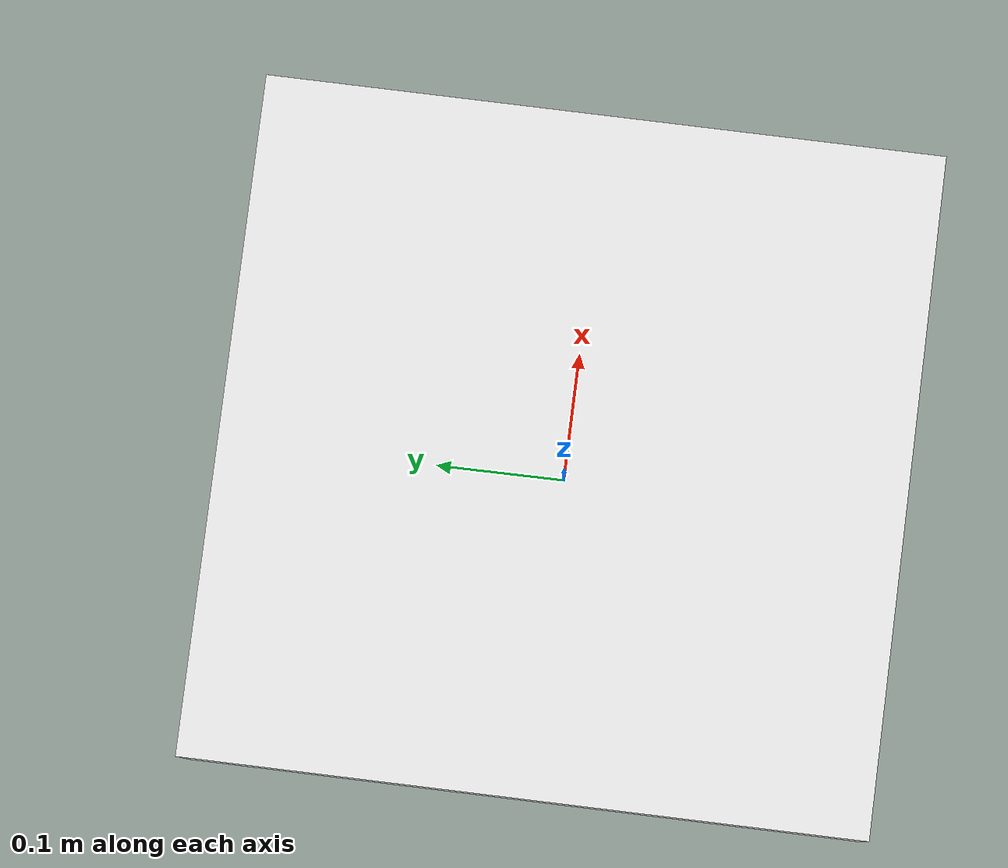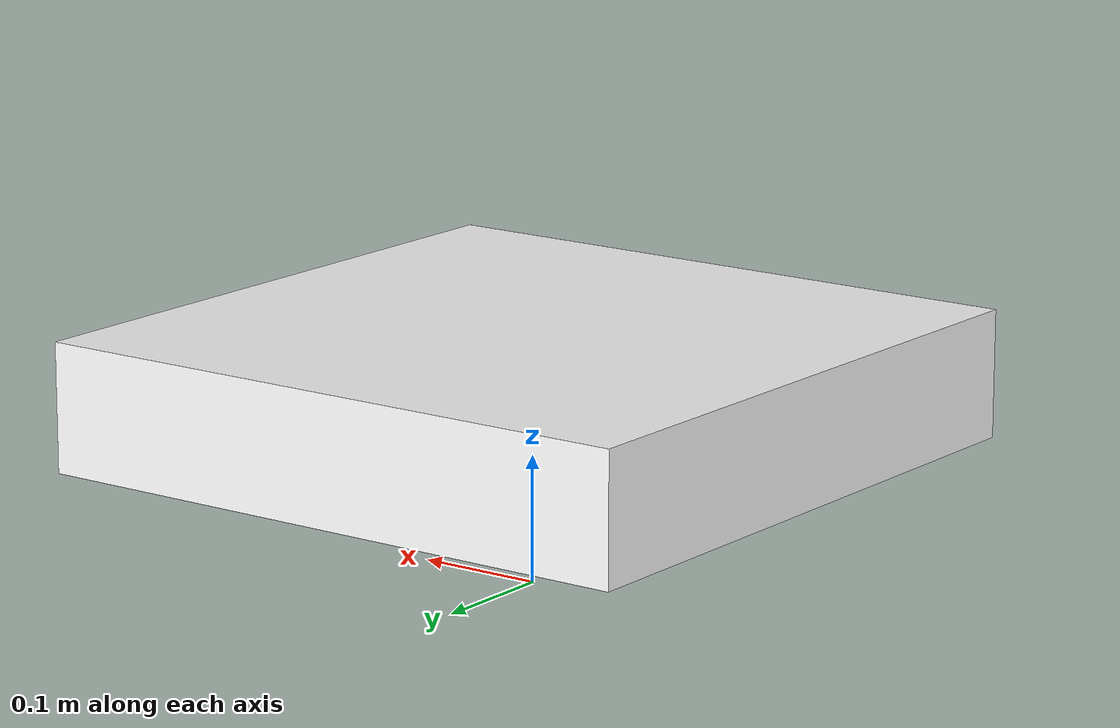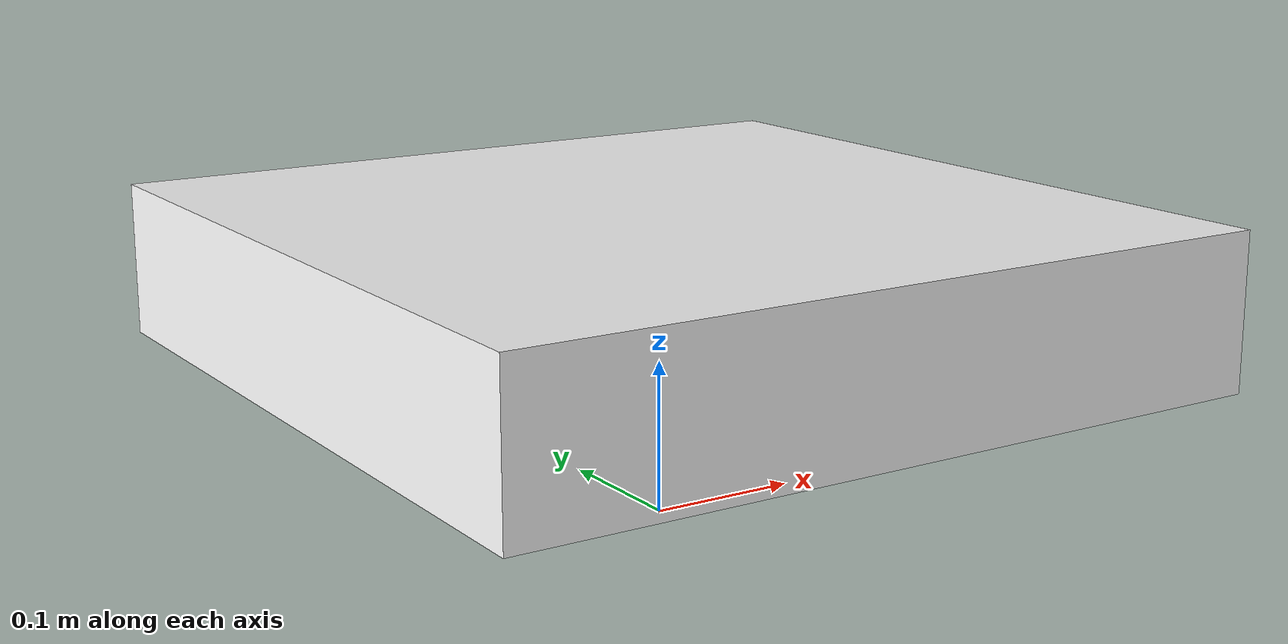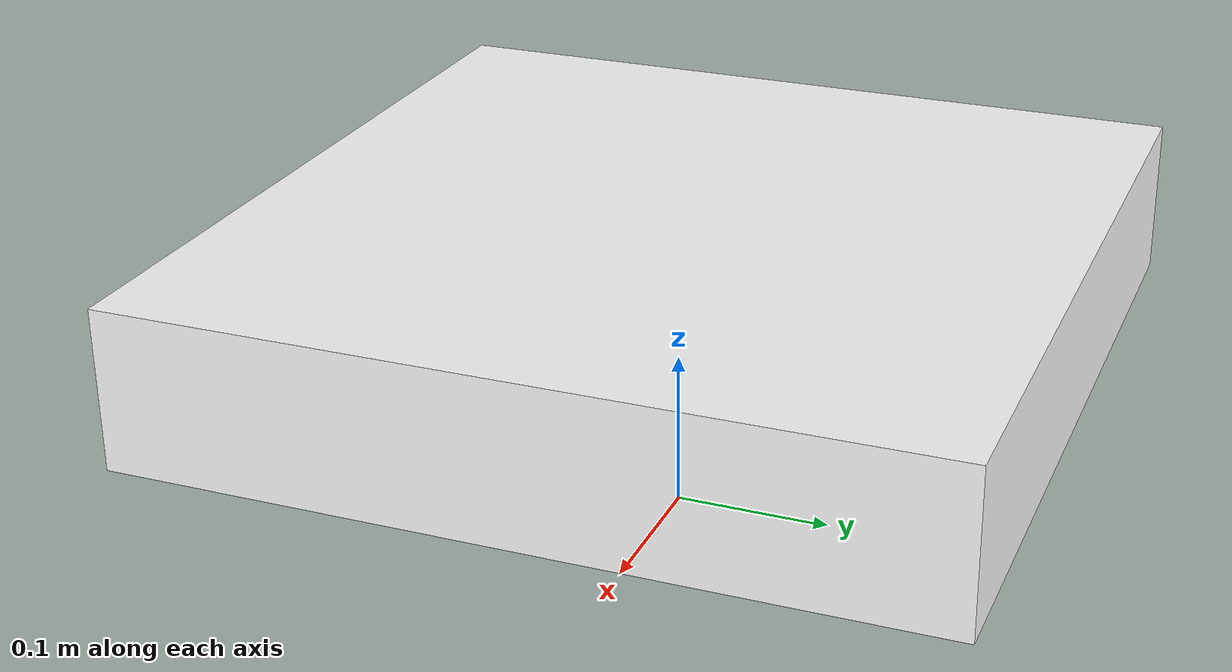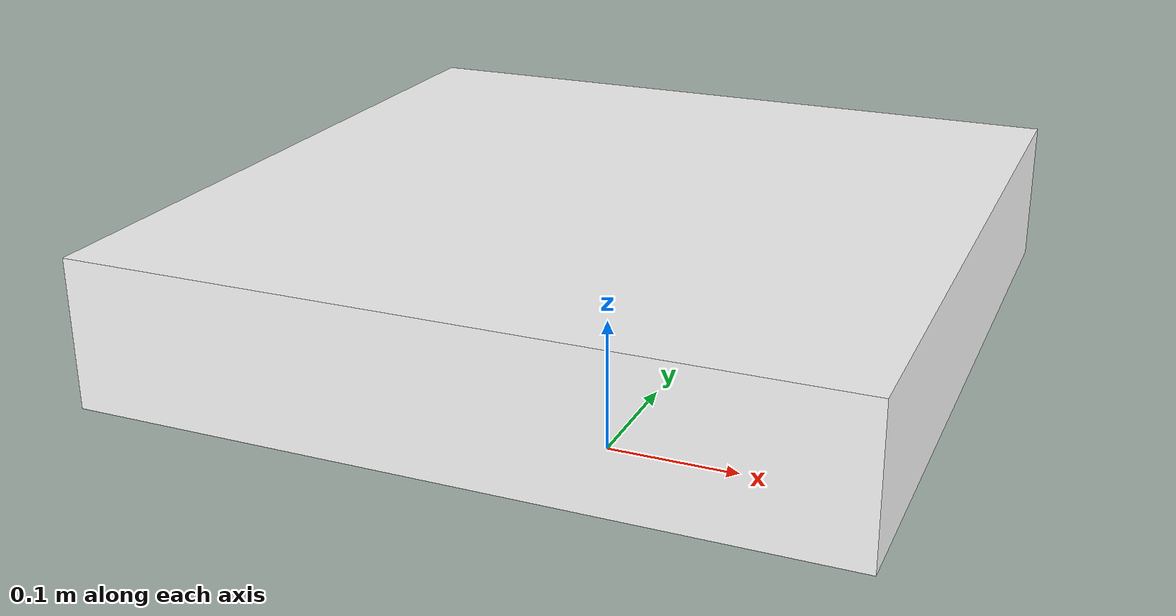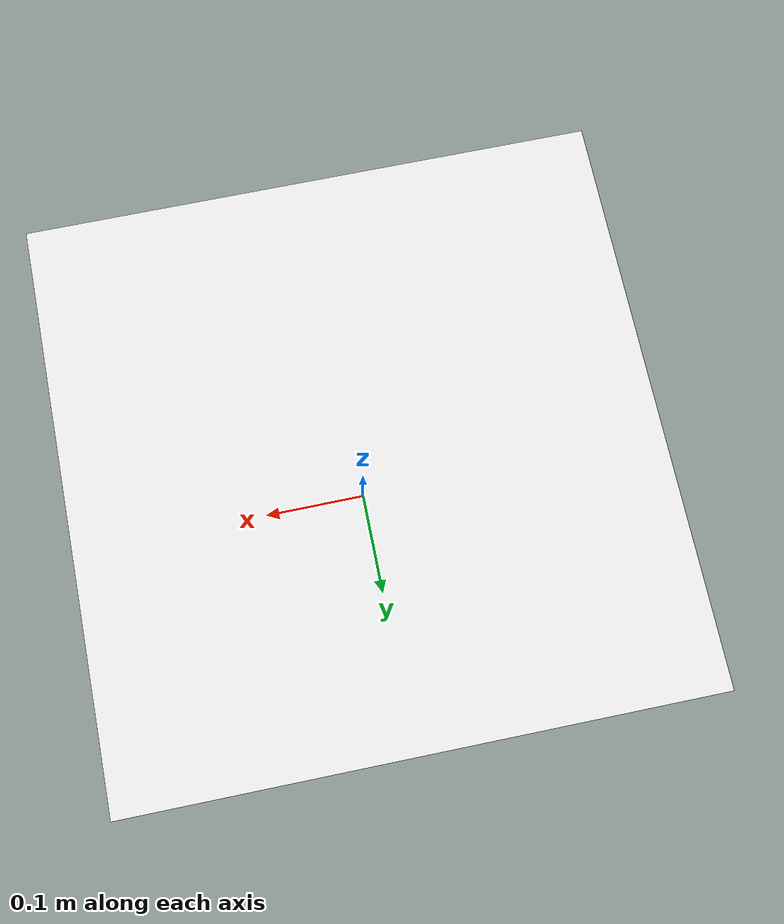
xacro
<?xml version="1.0"?>
<robot name="Legendary-Waffle" xmlns:xacro="http://ros.org/wiki/xacro"
            xmlns:sensor="http://playerstage.sourceforge.net/gazebo/xmlschema/#sensor"
            xmlns:controller="http://playerstage.sourceforge.net/gazebo/xmlschema/#controller"
            xmlns:interface="http://playerstage.sourceforge.net/gazebo/xmlschema/#interface">

  <xacro:include filename="plugins.xacro"/>

  <!-- DEFINING GENERIC PROPERTIES THAT ARE USED IN THE XACRO FILE -->

  <!-- along x axis -->
  <xacro:property name="base_length" value="0.5"/>
  <!-- along y axis -->
  <xacro:property name="base_width" value="0.5"/>
  <!-- along z axis -->
  <xacro:property name="base_height" value="0.1"/>
  <xacro:property name="base_mass" value="5"/>
  <xacro:property name="wheel_dia" value="0.1"/>
  <xacro:property name="wheel_height" value="0.05"/>
  <xacro:property name="wheel_mass" value="0.5"/>

  <!-- COLOURS FOR MATERIAL -->
  <material name="white">
    <color rgba="1 1 1 1"/>
  </material>

  <material name="black">
    <color rgba ="0 0 0 1"/>
  </material>

  <material name="green">
    <color rgba="0 1 0 1"/>
  </material>

  <!-- MACROS FOR INERTIAL PROPERTIES -->
  <xacro:macro name="base_inertial">
    <inertial>
      <mass value="${base_mass}" />
      <inertia ixx="${(1/12)*base_mass*((base_width*base_width)+(base_height*base_height))}"
        ixy="0.0"
        ixz="0.0"
        iyy="${(1/12)*base_mass*((base_height*base_height)+(base_length*base_length))}"
        iyz="0.0"
        izz="${(1/12)*base_mass*((base_width*base_width)+(base_length*base_length))}" />
    </inertial>
  </xacro:macro>

  <xacro:macro name="wheel_inertial">
    <inertial>
      <mass value="${wheel_mass}" />
      <inertia ixx="1.0" ixy="0.0" ixz="0.0" iyy="1.0" iyz="0.0" izz="1.0" />
    </inertial>
  </xacro:macro>

  <!-- MACRO FOR GENERIC WHEEL. SUPPLY PARAMS TO PLACE THEM, JOINT INCLUDEDE IN MACRO -->
  <xacro:macro name="wheel" params="left_right front_back relx rely">
    <link name="${left_right}_${front_back}_wheel">
      <visual>
        <origin xyz="0 0 0" rpy="${pi/2} 0 0"/>
        <geometry>
          <cylinder radius="${wheel_dia/2}" length="${wheel_height}"/>
        </geometry>
        <material name="black"/>
      </visual>
      <collision>
        <origin xyz="0 0 0" rpy="${pi/2} 0 0"/>
        <geometry>
          <cylinder radius="${wheel_dia/2}" length="${wheel_height}"/>
        </geometry>
      </collision>
      <xacro:wheel_inertial/>
    </link>

    <joint name="${left_right}_${front_back}_wheel_to_base_link" type="continuous">
      <origin xyz="${relx*((base_length/2)-wheel_dia/2)} ${rely*((base_width/2-wheel_height/2))} ${wheel_dia/2}" rpy="0 0 0"/>
      <axis xyz="0 1 0" rpy="0 0 0"/>
      <parent link="base_link"/>
      <child link="${left_right}_${front_back}_wheel"/>
    </joint>
  </xacro:macro>

  <!-- BASE LINK. MAIN BOX TO WHICH WHEEL AND EVERYTHING ELSE IS TO BE ATTACHED -->
  <link name="base_link">
    <visual>
      <origin xyz="0 0 ${wheel_dia + base_height/2}" rpy="0 0 0"/>
      <geometry>
        <box size="${base_length} ${base_width} ${base_height}"/>
      </geometry>
      <material name="white"/>
    </visual>
    <collision>
      <origin xyz="0 0 ${wheel_dia + base_height/2}" rpy="0 0 0"/>
      <geometry>
        <box size="${base_length} ${base_width} ${base_height}"/>
      </geometry>
    </collision>
    <xacro:base_inertial/>
  </link>

  <!-- CREATING AN INSTANCE OF EACH WHEEL -->
  <!-- ADD 4 WHEELS TO THE ABOVE BOT HERE -->
</robot>
